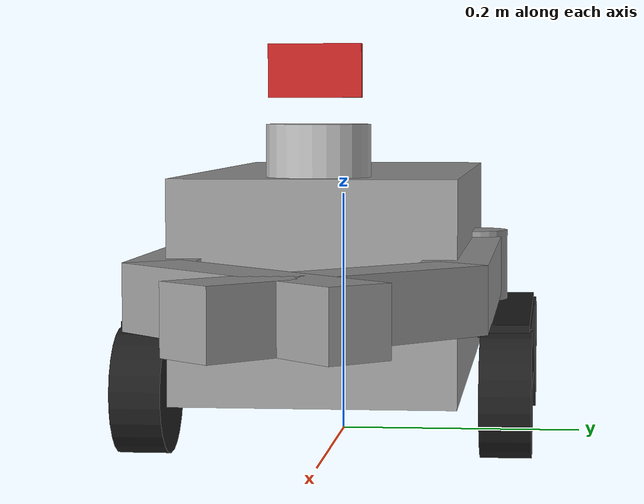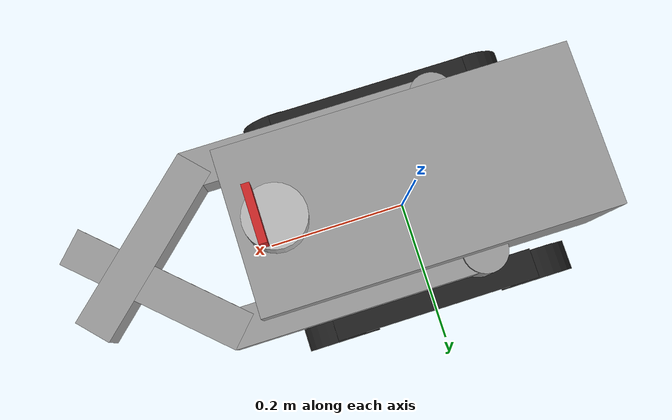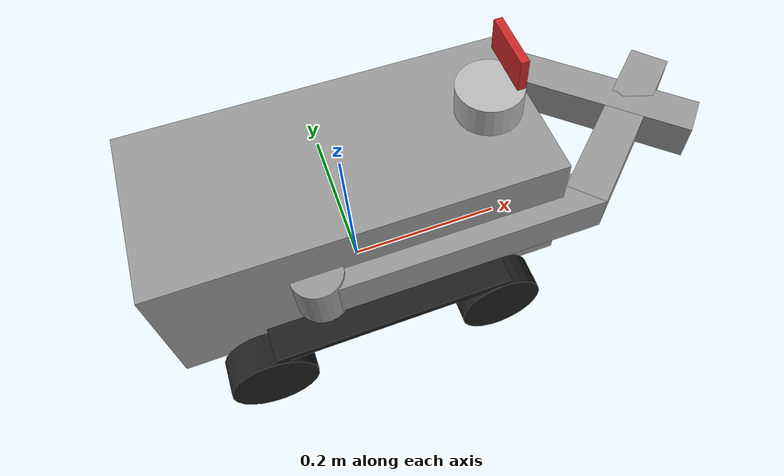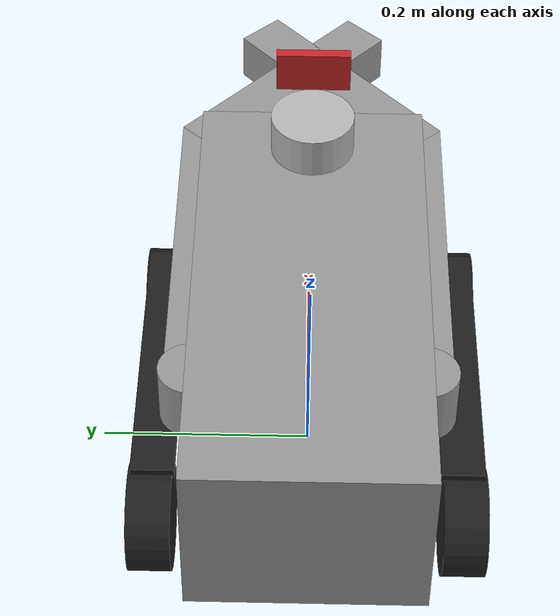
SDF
<?xml version='1.0'?>
<sdf version='1.7'>
  <model name='tankbot_gripper'>
    <link name='tankbot::chassis'>
      <pose>0 0 0.135 0 -0 0</pose>
      <inertial>
        <pose>0.0465 0 0 0 -0 0</pose>
        <mass>2</mass>
        <inertia>
          <ixx>0.0125927</ixx>
          <iyy>0.0408542</iyy>
          <izz>0.0438135</izz>
          <ixy>0</ixy>
          <ixz>0</ixz>
          <iyz>0</iyz>
        </inertia>
      </inertial>
      <self_collide>0</self_collide>
      <enable_wind>0</enable_wind>
      <kinematic>0</kinematic>
      <visual name='visual'>
        <geometry>
          <box>
            <size>0.465 0.216 0.17</size>
          </box>
        </geometry>
        <material>
          <script>
            <uri>file://media/materials/scripts/gazebo.material</uri>
            <name>Gazebo/Grey</name>
          </script>
          <shader type='pixel'/>
        </material>
        <pose>0 0 0 0 -0 0</pose>
        <transparency>0</transparency>
        <cast_shadows>1</cast_shadows>
      </visual>
      <collision name='collision'>
        <laser_retro>0</laser_retro>
        <max_contacts>10</max_contacts>
        <pose>0 0 0 0 -0 0</pose>
        <geometry>
          <box>
            <size>0.465 0.216 0.17</size>
          </box>
        </geometry>
        <surface>
          <friction>
            <ode>
              <mu>1</mu>
              <mu2>1</mu2>
              <fdir1>0 0 0</fdir1>
              <slip1>0</slip1>
              <slip2>0</slip2>
            </ode>
            <torsional>
              <coefficient>1</coefficient>
              <patch_radius>0</patch_radius>
              <surface_radius>0</surface_radius>
              <use_patch_radius>1</use_patch_radius>
              <ode>
                <slip>0</slip>
              </ode>
            </torsional>
          </friction>
          <bounce>
            <restitution_coefficient>0</restitution_coefficient>
            <threshold>1e+06</threshold>
          </bounce>
          <contact>
            <collide_without_contact>0</collide_without_contact>
            <collide_without_contact_bitmask>1</collide_without_contact_bitmask>
            <collide_bitmask>1</collide_bitmask>
            <ode>
              <soft_cfm>0</soft_cfm>
              <soft_erp>0.2</soft_erp>
              <kp>1e+13</kp>
              <kd>1</kd>
              <max_vel>0.01</max_vel>
              <min_depth>0</min_depth>
            </ode>
            <bullet>
              <split_impulse>1</split_impulse>
              <split_impulse_penetration_threshold>-0.01</split_impulse_penetration_threshold>
              <soft_cfm>0</soft_cfm>
              <soft_erp>0.2</soft_erp>
              <kp>1e+13</kp>
              <kd>1</kd>
            </bullet>
          </contact>
        </surface>
      </collision>
    </link>
    <link name='tankbot::camera_sensor::link'>
      <inertial>
        <mass>0.1</mass>
        <pose>0 0 0 0 -0 0</pose>
        <inertia>
          <ixx>1</ixx>
          <ixy>0</ixy>
          <ixz>0</ixz>
          <iyy>1</iyy>
          <iyz>0</iyz>
          <izz>1</izz>
        </inertia>
      </inertial>
      <sensor name='camera' type='camera'>
        <camera>
          <horizontal_fov>1.39626</horizontal_fov>
          <image>
            <width>800</width>
            <height>800</height>
          </image>
          <clip>
            <near>0.02</near>
            <far>300</far>
          </clip>
        </camera>
        <always_on>1</always_on>
        <update_rate>10</update_rate>
        <visualize>1</visualize>
        <plugin name='camera_controller' filename='libCameraPlugin.so'/>
      </sensor>
      <pose>0.200001 0 0.3 0 -0 0</pose>
      <self_collide>0</self_collide>
      <enable_wind>0</enable_wind>
      <kinematic>0</kinematic>
      <visual name='visual'>
        <geometry>
          <box>
            <size>0.01 0.07 0.04</size>
          </box>
        </geometry>
        <material>
          <script>
            <uri>file://media/materials/scripts/gazebo.material</uri>
            <name>Gazebo/Red</name>
          </script>
          <shader type='pixel'/>
        </material>
        <pose>0 0 0 0 -0 0</pose>
        <transparency>0</transparency>
        <cast_shadows>1</cast_shadows>
      </visual>
      <collision name='collision'>
        <laser_retro>0</laser_retro>
        <max_contacts>10</max_contacts>
        <pose>0 0 -0.0145 0 -0 0</pose>
        <geometry>
          <box>
            <size>0.01 0.07 0.04</size>
          </box>
        </geometry>
        <surface>
          <friction>
            <ode>
              <mu>1</mu>
              <mu2>1</mu2>
              <fdir1>0 0 0</fdir1>
              <slip1>0</slip1>
              <slip2>0</slip2>
            </ode>
            <torsional>
              <coefficient>1</coefficient>
              <patch_radius>0</patch_radius>
              <surface_radius>0</surface_radius>
              <use_patch_radius>1</use_patch_radius>
              <ode>
                <slip>0</slip>
              </ode>
            </torsional>
          </friction>
          <bounce>
            <restitution_coefficient>0</restitution_coefficient>
            <threshold>1e+06</threshold>
          </bounce>
          <contact>
            <collide_without_contact>0</collide_without_contact>
            <collide_without_contact_bitmask>1</collide_without_contact_bitmask>
            <collide_bitmask>1</collide_bitmask>
            <ode>
              <soft_cfm>0</soft_cfm>
              <soft_erp>0.2</soft_erp>
              <kp>1e+13</kp>
              <kd>1</kd>
              <max_vel>0.01</max_vel>
              <min_depth>0</min_depth>
            </ode>
            <bullet>
              <split_impulse>1</split_impulse>
              <split_impulse_penetration_threshold>-0.01</split_impulse_penetration_threshold>
              <soft_cfm>0</soft_cfm>
              <soft_erp>0.2</soft_erp>
              <kp>1e+13</kp>
              <kd>1</kd>
            </bullet>
          </contact>
        </surface>
      </collision>
    </link>
    <link name='tankbot::chain_l_up'>
      <pose>0.0098 0.14 0.1 0 -0 0</pose>
      <gravity>0</gravity>
      <self_collide>0</self_collide>
      <inertial>
        <pose>0 0 0 0 -0 0</pose>
        <inertia>
          <ixx>1</ixx>
          <ixy>0</ixy>
          <ixz>0</ixz>
          <iyy>1</iyy>
          <iyz>0</iyz>
          <izz>1</izz>
        </inertia>
        <mass>1</mass>
      </inertial>
      <enable_wind>0</enable_wind>
      <kinematic>0</kinematic>
      <visual name='visual'>
        <geometry>
          <box>
            <size>0.28 0.04 0.01</size>
          </box>
        </geometry>
        <material>
          <script>
            <uri>file://media/materials/scripts/gazebo.material</uri>
            <name>Gazebo/Black</name>
          </script>
          <shader type='pixel'/>
        </material>
        <pose>0 0 0 0 -0 0</pose>
        <transparency>0</transparency>
        <cast_shadows>1</cast_shadows>
      </visual>
      <collision name='collision'>
        <laser_retro>0</laser_retro>
        <max_contacts>10</max_contacts>
        <pose>0 0 0 0 -0 0</pose>
        <geometry>
          <box>
            <size>0.28 0.04 0.01</size>
          </box>
        </geometry>
        <surface>
          <friction>
            <ode>
              <mu>1</mu>
              <mu2>1</mu2>
              <fdir1>0 0 0</fdir1>
              <slip1>0</slip1>
              <slip2>0</slip2>
            </ode>
            <torsional>
              <coefficient>1</coefficient>
              <patch_radius>0</patch_radius>
              <surface_radius>0</surface_radius>
              <use_patch_radius>1</use_patch_radius>
              <ode>
                <slip>0</slip>
              </ode>
            </torsional>
          </friction>
          <bounce>
            <restitution_coefficient>0</restitution_coefficient>
            <threshold>1e+06</threshold>
          </bounce>
          <contact>
            <collide_without_contact>0</collide_without_contact>
            <collide_without_contact_bitmask>1</collide_without_contact_bitmask>
            <collide_bitmask>1</collide_bitmask>
            <ode>
              <soft_cfm>0</soft_cfm>
              <soft_erp>0.2</soft_erp>
              <kp>1e+13</kp>
              <kd>1</kd>
              <max_vel>0.01</max_vel>
              <min_depth>0</min_depth>
            </ode>
            <bullet>
              <split_impulse>1</split_impulse>
              <split_impulse_penetration_threshold>-0.01</split_impulse_penetration_threshold>
              <soft_cfm>0</soft_cfm>
              <soft_erp>0.2</soft_erp>
              <kp>1e+13</kp>
              <kd>1</kd>
            </bullet>
          </contact>
        </surface>
      </collision>
    </link>
    <link name='tankbot::chain_r_up'>
      <pose>0.0098 -0.14 0.1 0 -0 0</pose>
      <gravity>0</gravity>
      <self_collide>0</self_collide>
      <inertial>
        <pose>0 0 0 0 -0 0</pose>
        <inertia>
          <ixx>1</ixx>
          <ixy>0</ixy>
          <ixz>0</ixz>
          <iyy>1</iyy>
          <iyz>0</iyz>
          <izz>1</izz>
        </inertia>
        <mass>1</mass>
      </inertial>
      <enable_wind>0</enable_wind>
      <kinematic>0</kinematic>
      <visual name='visual'>
        <geometry>
          <box>
            <size>0.28 0.04 0.01</size>
          </box>
        </geometry>
        <material>
          <script>
            <uri>file://media/materials/scripts/gazebo.material</uri>
            <name>Gazebo/Black</name>
          </script>
          <shader type='pixel'/>
        </material>
        <pose>0 0 0 0 -0 0</pose>
        <transparency>0</transparency>
        <cast_shadows>1</cast_shadows>
      </visual>
      <collision name='collision'>
        <laser_retro>0</laser_retro>
        <max_contacts>10</max_contacts>
        <pose>0 0 0 0 -0 0</pose>
        <geometry>
          <box>
            <size>0.28 0.04 0.01</size>
          </box>
        </geometry>
        <surface>
          <friction>
            <ode>
              <mu>1</mu>
              <mu2>1</mu2>
              <fdir1>0 0 0</fdir1>
              <slip1>0</slip1>
              <slip2>0</slip2>
            </ode>
            <torsional>
              <coefficient>1</coefficient>
              <patch_radius>0</patch_radius>
              <surface_radius>0</surface_radius>
              <use_patch_radius>1</use_patch_radius>
              <ode>
                <slip>0</slip>
              </ode>
            </torsional>
          </friction>
          <bounce>
            <restitution_coefficient>0</restitution_coefficient>
            <threshold>1e+06</threshold>
          </bounce>
          <contact>
            <collide_without_contact>0</collide_without_contact>
            <collide_without_contact_bitmask>1</collide_without_contact_bitmask>
            <collide_bitmask>1</collide_bitmask>
            <ode>
              <soft_cfm>0</soft_cfm>
              <soft_erp>0.2</soft_erp>
              <kp>1e+13</kp>
              <kd>1</kd>
              <max_vel>0.01</max_vel>
              <min_depth>0</min_depth>
            </ode>
            <bullet>
              <split_impulse>1</split_impulse>
              <split_impulse_penetration_threshold>-0.01</split_impulse_penetration_threshold>
              <soft_cfm>0</soft_cfm>
              <soft_erp>0.2</soft_erp>
              <kp>1e+13</kp>
              <kd>1</kd>
            </bullet>
          </contact>
        </surface>
      </collision>
    </link>
    <link name='tankbot::ultrasonic_sensor::link'>
      <inertial>
        <mass>0.1</mass>
        <pose>0 0 0 0 -0 0</pose>
        <inertia>
          <ixx>1</ixx>
          <ixy>0</ixy>
          <ixz>0</ixz>
          <iyy>1</iyy>
          <iyz>0</iyz>
          <izz>1</izz>
        </inertia>
      </inertial>
      <sensor name='sonar' type='sonar'>
        <pose>0.04 0 0 0 1.5 3.14</pose>
        <sonar>
          <min>0</min>
          <max>3</max>
          <radius>0.3</radius>
        </sonar>
        <plugin name='sonar' filename='libSonarPlugin.so'/>
        <always_on>1</always_on>
        <update_rate>30</update_rate>
        <visualize>1</visualize>
      </sensor>
      <pose>0.18 0 0.24 0 -0 0</pose>
      <self_collide>0</self_collide>
      <enable_wind>0</enable_wind>
      <kinematic>0</kinematic>
      <visual name='visual'>
        <geometry>
          <cylinder>
            <radius>0.04</radius>
            <length>0.04</length>
          </cylinder>
        </geometry>
        <material>
          <shader type='pixel'/>
        </material>
        <pose>0 0 0 0 -0 0</pose>
        <transparency>0</transparency>
        <cast_shadows>1</cast_shadows>
      </visual>
      <collision name='collision-base'>
        <laser_retro>0</laser_retro>
        <max_contacts>10</max_contacts>
        <pose>0 0 -0.0145 0 -0 0</pose>
        <geometry>
          <box>
            <size>0.05 0.05 0.041</size>
          </box>
        </geometry>
        <surface>
          <friction>
            <ode>
              <mu>1</mu>
              <mu2>1</mu2>
              <fdir1>0 0 0</fdir1>
              <slip1>0</slip1>
              <slip2>0</slip2>
            </ode>
            <torsional>
              <coefficient>1</coefficient>
              <patch_radius>0</patch_radius>
              <surface_radius>0</surface_radius>
              <use_patch_radius>1</use_patch_radius>
              <ode>
                <slip>0</slip>
              </ode>
            </torsional>
          </friction>
          <bounce>
            <restitution_coefficient>0</restitution_coefficient>
            <threshold>1e+06</threshold>
          </bounce>
          <contact>
            <collide_without_contact>0</collide_without_contact>
            <collide_without_contact_bitmask>1</collide_without_contact_bitmask>
            <collide_bitmask>1</collide_bitmask>
            <ode>
              <soft_cfm>0</soft_cfm>
              <soft_erp>0.2</soft_erp>
              <kp>1e+13</kp>
              <kd>1</kd>
              <max_vel>0.01</max_vel>
              <min_depth>0</min_depth>
            </ode>
            <bullet>
              <split_impulse>1</split_impulse>
              <split_impulse_penetration_threshold>-0.01</split_impulse_penetration_threshold>
              <soft_cfm>0</soft_cfm>
              <soft_erp>0.2</soft_erp>
              <kp>1e+13</kp>
              <kd>1</kd>
            </bullet>
          </contact>
        </surface>
      </collision>
      <collision name='collision-top'>
        <laser_retro>0</laser_retro>
        <max_contacts>10</max_contacts>
        <pose>0 0 0.0205 0 -0 0</pose>
        <geometry>
          <cylinder>
            <radius>0.021</radius>
            <length>0.029</length>
          </cylinder>
        </geometry>
        <surface>
          <friction>
            <ode>
              <mu>1</mu>
              <mu2>1</mu2>
              <fdir1>0 0 0</fdir1>
              <slip1>0</slip1>
              <slip2>0</slip2>
            </ode>
            <torsional>
              <coefficient>1</coefficient>
              <patch_radius>0</patch_radius>
              <surface_radius>0</surface_radius>
              <use_patch_radius>1</use_patch_radius>
              <ode>
                <slip>0</slip>
              </ode>
            </torsional>
          </friction>
          <bounce>
            <restitution_coefficient>0</restitution_coefficient>
            <threshold>1e+06</threshold>
          </bounce>
          <contact>
            <collide_without_contact>0</collide_without_contact>
            <collide_without_contact_bitmask>1</collide_without_contact_bitmask>
            <collide_bitmask>1</collide_bitmask>
            <ode>
              <soft_cfm>0</soft_cfm>
              <soft_erp>0.2</soft_erp>
              <kp>1e+13</kp>
              <kd>1</kd>
              <max_vel>0.01</max_vel>
              <min_depth>0</min_depth>
            </ode>
            <bullet>
              <split_impulse>1</split_impulse>
              <split_impulse_penetration_threshold>-0.01</split_impulse_penetration_threshold>
              <soft_cfm>0</soft_cfm>
              <soft_erp>0.2</soft_erp>
              <kp>1e+13</kp>
              <kd>1</kd>
            </bullet>
          </contact>
        </surface>
      </collision>
    </link>
    <link name='tankbot::wheel_fl'>
      <pose>0.1395 0.142 0.05 -1.5708 -0.087266 0</pose>
      <inertial>
        <mass>0.25</mass>
        <inertia>
          <ixx>0.000189583</ixx>
          <iyy>0.000189583</iyy>
          <izz>0.0003125</izz>
          <ixy>0</ixy>
          <ixz>0</ixz>
          <iyz>0</iyz>
        </inertia>
        <pose>0 0 0 0 -0 0</pose>
      </inertial>
      <self_collide>0</self_collide>
      <enable_wind>0</enable_wind>
      <kinematic>0</kinematic>
      <visual name='tankbot::wheel_fl'>
        <geometry>
          <cylinder>
            <radius>0.05</radius>
            <length>0.04</length>
          </cylinder>
        </geometry>
        <material>
          <script>
            <uri>file://media/materials/scripts/gazebo.material</uri>
            <name>Gazebo/Black</name>
          </script>
          <shader type='pixel'/>
        </material>
        <pose>0 0 0 0 -0 0</pose>
        <transparency>0</transparency>
        <cast_shadows>1</cast_shadows>
      </visual>
      <collision name='collision'>
        <laser_retro>0</laser_retro>
        <max_contacts>10</max_contacts>
        <pose>0 0 0 0 -0 0</pose>
        <geometry>
          <cylinder>
            <radius>0.05</radius>
            <length>0.04</length>
          </cylinder>
        </geometry>
        <surface>
          <friction>
            <ode>
              <mu>1</mu>
              <mu2>1</mu2>
              <fdir1>0 0 0</fdir1>
              <slip1>0</slip1>
              <slip2>0</slip2>
            </ode>
            <torsional>
              <coefficient>1</coefficient>
              <patch_radius>0</patch_radius>
              <surface_radius>0</surface_radius>
              <use_patch_radius>1</use_patch_radius>
              <ode>
                <slip>0</slip>
              </ode>
            </torsional>
          </friction>
          <bounce>
            <restitution_coefficient>0</restitution_coefficient>
            <threshold>1e+06</threshold>
          </bounce>
          <contact>
            <collide_without_contact>0</collide_without_contact>
            <collide_without_contact_bitmask>1</collide_without_contact_bitmask>
            <collide_bitmask>1</collide_bitmask>
            <ode>
              <soft_cfm>0</soft_cfm>
              <soft_erp>0.2</soft_erp>
              <kp>1e+13</kp>
              <kd>1</kd>
              <max_vel>0.01</max_vel>
              <min_depth>0</min_depth>
            </ode>
            <bullet>
              <split_impulse>1</split_impulse>
              <split_impulse_penetration_threshold>-0.01</split_impulse_penetration_threshold>
              <soft_cfm>0</soft_cfm>
              <soft_erp>0.2</soft_erp>
              <kp>1e+13</kp>
              <kd>1</kd>
            </bullet>
          </contact>
        </surface>
      </collision>
    </link>
    <link name='tankbot::wheel_fr'>
      <pose>0.1395 -0.142 0.05 -1.5708 -0.087266 0</pose>
      <inertial>
        <mass>0.25</mass>
        <inertia>
          <ixx>0.000189583</ixx>
          <iyy>0.000189583</iyy>
          <izz>0.0003125</izz>
          <ixy>0</ixy>
          <ixz>0</ixz>
          <iyz>0</iyz>
        </inertia>
        <pose>0 0 0 0 -0 0</pose>
      </inertial>
      <self_collide>0</self_collide>
      <enable_wind>0</enable_wind>
      <kinematic>0</kinematic>
      <visual name='visual'>
        <geometry>
          <cylinder>
            <radius>0.05</radius>
            <length>0.04</length>
          </cylinder>
        </geometry>
        <material>
          <script>
            <uri>file://media/materials/scripts/gazebo.material</uri>
            <name>Gazebo/Black</name>
          </script>
          <shader type='pixel'/>
        </material>
        <pose>0 0 0 0 -0 0</pose>
        <transparency>0</transparency>
        <cast_shadows>1</cast_shadows>
      </visual>
      <collision name='collision'>
        <laser_retro>0</laser_retro>
        <max_contacts>10</max_contacts>
        <pose>0 0 0 0 -0 0</pose>
        <geometry>
          <cylinder>
            <radius>0.05</radius>
            <length>0.04</length>
          </cylinder>
        </geometry>
        <surface>
          <friction>
            <ode>
              <mu>1</mu>
              <mu2>1</mu2>
              <fdir1>0 0 0</fdir1>
              <slip1>0</slip1>
              <slip2>0</slip2>
            </ode>
            <torsional>
              <coefficient>1</coefficient>
              <patch_radius>0</patch_radius>
              <surface_radius>0</surface_radius>
              <use_patch_radius>1</use_patch_radius>
              <ode>
                <slip>0</slip>
              </ode>
            </torsional>
          </friction>
          <bounce>
            <restitution_coefficient>0</restitution_coefficient>
            <threshold>1e+06</threshold>
          </bounce>
          <contact>
            <collide_without_contact>0</collide_without_contact>
            <collide_without_contact_bitmask>1</collide_without_contact_bitmask>
            <collide_bitmask>1</collide_bitmask>
            <ode>
              <soft_cfm>0</soft_cfm>
              <soft_erp>0.2</soft_erp>
              <kp>1e+13</kp>
              <kd>1</kd>
              <max_vel>0.01</max_vel>
              <min_depth>0</min_depth>
            </ode>
            <bullet>
              <split_impulse>1</split_impulse>
              <split_impulse_penetration_threshold>-0.01</split_impulse_penetration_threshold>
              <soft_cfm>0</soft_cfm>
              <soft_erp>0.2</soft_erp>
              <kp>1e+13</kp>
              <kd>1</kd>
            </bullet>
          </contact>
        </surface>
      </collision>
    </link>
    <link name='tankbot::wheel_rl'>
      <pose>-0.1395 0.142 0.05 -1.5708 0 0</pose>
      <inertial>
        <mass>0.25</mass>
        <inertia>
          <ixx>0.000189583</ixx>
          <iyy>0.000189583</iyy>
          <izz>0.0003125</izz>
          <ixy>0</ixy>
          <ixz>0</ixz>
          <iyz>0</iyz>
        </inertia>
        <pose>0 0 0 0 -0 0</pose>
      </inertial>
      <self_collide>0</self_collide>
      <enable_wind>0</enable_wind>
      <kinematic>0</kinematic>
      <visual name='visual'>
        <geometry>
          <cylinder>
            <radius>0.05</radius>
            <length>0.04</length>
          </cylinder>
        </geometry>
        <material>
          <script>
            <uri>file://media/materials/scripts/gazebo.material</uri>
            <name>Gazebo/Black</name>
          </script>
          <shader type='pixel'/>
        </material>
        <pose>0 0 0 0 -0 0</pose>
        <transparency>0</transparency>
        <cast_shadows>1</cast_shadows>
      </visual>
      <collision name='collision'>
        <laser_retro>0</laser_retro>
        <max_contacts>10</max_contacts>
        <pose>0 0 0 0 -0 0</pose>
        <geometry>
          <cylinder>
            <radius>0.05</radius>
            <length>0.04</length>
          </cylinder>
        </geometry>
        <surface>
          <friction>
            <ode>
              <mu>1</mu>
              <mu2>1</mu2>
              <fdir1>0 0 0</fdir1>
              <slip1>0</slip1>
              <slip2>0</slip2>
            </ode>
            <torsional>
              <coefficient>1</coefficient>
              <patch_radius>0</patch_radius>
              <surface_radius>0</surface_radius>
              <use_patch_radius>1</use_patch_radius>
              <ode>
                <slip>0</slip>
              </ode>
            </torsional>
          </friction>
          <bounce>
            <restitution_coefficient>0</restitution_coefficient>
            <threshold>1e+06</threshold>
          </bounce>
          <contact>
            <collide_without_contact>0</collide_without_contact>
            <collide_without_contact_bitmask>1</collide_without_contact_bitmask>
            <collide_bitmask>1</collide_bitmask>
            <ode>
              <soft_cfm>0</soft_cfm>
              <soft_erp>0.2</soft_erp>
              <kp>1e+13</kp>
              <kd>1</kd>
              <max_vel>0.01</max_vel>
              <min_depth>0</min_depth>
            </ode>
            <bullet>
              <split_impulse>1</split_impulse>
              <split_impulse_penetration_threshold>-0.01</split_impulse_penetration_threshold>
              <soft_cfm>0</soft_cfm>
              <soft_erp>0.2</soft_erp>
              <kp>1e+13</kp>
              <kd>1</kd>
            </bullet>
          </contact>
        </surface>
      </collision>
    </link>
    <link name='tankbot::wheel_rr'>
      <pose>-0.1395 -0.142 0.05 -1.5708 0 0</pose>
      <inertial>
        <mass>0.25</mass>
        <inertia>
          <ixx>0.000189583</ixx>
          <iyy>0.000189583</iyy>
          <izz>0.0003125</izz>
          <ixy>0</ixy>
          <ixz>0</ixz>
          <iyz>0</iyz>
        </inertia>
        <pose>0 0 0 0 -0 0</pose>
      </inertial>
      <self_collide>0</self_collide>
      <enable_wind>0</enable_wind>
      <kinematic>0</kinematic>
      <visual name='visual'>
        <geometry>
          <cylinder>
            <radius>0.05</radius>
            <length>0.04</length>
          </cylinder>
        </geometry>
        <material>
          <script>
            <uri>file://media/materials/scripts/gazebo.material</uri>
            <name>Gazebo/Black</name>
          </script>
          <shader type='pixel'/>
        </material>
        <pose>0 0 0 0 -0 0</pose>
        <transparency>0</transparency>
        <cast_shadows>1</cast_shadows>
      </visual>
      <collision name='collision'>
        <laser_retro>0</laser_retro>
        <max_contacts>10</max_contacts>
        <pose>0 0 0 0 -0 0</pose>
        <geometry>
          <cylinder>
            <radius>0.05</radius>
            <length>0.04</length>
          </cylinder>
        </geometry>
        <surface>
          <friction>
            <ode>
              <mu>1</mu>
              <mu2>1</mu2>
              <fdir1>0 0 0</fdir1>
              <slip1>0</slip1>
              <slip2>0</slip2>
            </ode>
            <torsional>
              <coefficient>1</coefficient>
              <patch_radius>0</patch_radius>
              <surface_radius>0</surface_radius>
              <use_patch_radius>1</use_patch_radius>
              <ode>
                <slip>0</slip>
              </ode>
            </torsional>
          </friction>
          <bounce>
            <restitution_coefficient>0</restitution_coefficient>
            <threshold>1e+06</threshold>
          </bounce>
          <contact>
            <collide_without_contact>0</collide_without_contact>
            <collide_without_contact_bitmask>1</collide_without_contact_bitmask>
            <collide_bitmask>1</collide_bitmask>
            <ode>
              <soft_cfm>0</soft_cfm>
              <soft_erp>0.2</soft_erp>
              <kp>1e+13</kp>
              <kd>1</kd>
              <max_vel>0.01</max_vel>
              <min_depth>0</min_depth>
            </ode>
            <bullet>
              <split_impulse>1</split_impulse>
              <split_impulse_penetration_threshold>-0.01</split_impulse_penetration_threshold>
              <soft_cfm>0</soft_cfm>
              <soft_erp>0.2</soft_erp>
              <kp>1e+13</kp>
              <kd>1</kd>
            </bullet>
          </contact>
        </surface>
      </collision>
    </link>
    <link name='tankbot_gripper::right_aftarm'>
      <inertial>
        <mass>1</mass>
        <inertia>
          <ixx>0.166667</ixx>
          <ixy>0</ixy>
          <ixz>0</ixz>
          <iyy>0.166667</iyy>
          <iyz>0</iyz>
          <izz>0.166667</izz>
        </inertia>
        <pose>0 0 0 0 -0 0</pose>
      </inertial>
      <pose>0.101778 -0.106425 0.136044 -4e-06 -8e-06 -0.000587</pose>
      <gravity>1</gravity>
      <self_collide>0</self_collide>
      <kinematic>0</kinematic>
      <enable_wind>0</enable_wind>
      <visual name='visual'>
        <pose>0 0 0 0 -0 0</pose>
        <geometry>
          <box>
            <size>0.35 0.05 0.05</size>
          </box>
        </geometry>
        <material>
          <lighting>1</lighting>
          <script>
            <uri>file://media/materials/scripts/gazebo.material</uri>
            <name>Gazebo/Grey</name>
          </script>
          <shader type='pixel'>
            <normal_map>__default__</normal_map>
          </shader>
          <ambient>0.3 0.3 0.3 1</ambient>
          <diffuse>0.7 0.7 0.7 1</diffuse>
          <specular>0.01 0.01 0.01 1</specular>
          <emissive>0 0 0 1</emissive>
        </material>
        <transparency>0</transparency>
        <cast_shadows>1</cast_shadows>
      </visual>
      <collision name='collision'>
        <laser_retro>0</laser_retro>
        <max_contacts>10</max_contacts>
        <pose>0 0 0 0 -0 0</pose>
        <geometry>
          <box>
            <size>0.35 0.05 0.05</size>
          </box>
        </geometry>
        <surface>
          <friction>
            <ode>
              <mu>1</mu>
              <mu2>1</mu2>
              <fdir1>0 0 0</fdir1>
              <slip1>0</slip1>
              <slip2>0</slip2>
            </ode>
            <torsional>
              <coefficient>1</coefficient>
              <patch_radius>0</patch_radius>
              <surface_radius>0</surface_radius>
              <use_patch_radius>1</use_patch_radius>
              <ode>
                <slip>0</slip>
              </ode>
            </torsional>
          </friction>
          <bounce>
            <restitution_coefficient>0</restitution_coefficient>
            <threshold>1e+06</threshold>
          </bounce>
          <contact>
            <collide_without_contact>0</collide_without_contact>
            <collide_without_contact_bitmask>1</collide_without_contact_bitmask>
            <collide_bitmask>1</collide_bitmask>
            <ode>
              <soft_cfm>0</soft_cfm>
              <soft_erp>0.2</soft_erp>
              <kp>1e+13</kp>
              <kd>1</kd>
              <max_vel>0.01</max_vel>
              <min_depth>0</min_depth>
            </ode>
            <bullet>
              <split_impulse>1</split_impulse>
              <split_impulse_penetration_threshold>-0.01</split_impulse_penetration_threshold>
              <soft_cfm>0</soft_cfm>
              <soft_erp>0.2</soft_erp>
              <kp>1e+13</kp>
              <kd>1</kd>
            </bullet>
          </contact>
        </surface>
      </collision>
    </link>
    <link name='tankbot_gripper::right_forearm'>
      <inertial>
        <mass>1</mass>
        <inertia>
          <ixx>0.166667</ixx>
          <ixy>0</ixy>
          <ixz>0</ixz>
          <iyy>0.166667</iyy>
          <iyz>0</iyz>
          <izz>0.166667</izz>
        </inertia>
        <pose>0 0 0 0 -0 0</pose>
      </inertial>
      <pose>0.351181 -0.028037 0.136046 0 -0 0.75</pose>
      <gravity>1</gravity>
      <self_collide>0</self_collide>
      <kinematic>0</kinematic>
      <enable_wind>0</enable_wind>
      <visual name='visual'>
        <pose>0 0 0 0 -0 0</pose>
        <geometry>
          <box>
            <size>0.25 0.05 0.05</size>
          </box>
        </geometry>
        <material>
          <lighting>1</lighting>
          <script>
            <uri>file://media/materials/scripts/gazebo.material</uri>
            <name>Gazebo/Grey</name>
          </script>
          <shader type='pixel'>
            <normal_map>__default__</normal_map>
          </shader>
          <ambient>0.3 0.3 0.3 1</ambient>
          <diffuse>0.7 0.7 0.7 1</diffuse>
          <specular>0.01 0.01 0.01 1</specular>
          <emissive>0 0 0 1</emissive>
        </material>
        <transparency>0</transparency>
        <cast_shadows>1</cast_shadows>
      </visual>
      <collision name='collision'>
        <laser_retro>0</laser_retro>
        <max_contacts>10</max_contacts>
        <pose>0 0 0 0 -0 0</pose>
        <geometry>
          <box>
            <size>0.25 0.05 0.05</size>
          </box>
        </geometry>
        <surface>
          <friction>
            <ode>
              <mu>1</mu>
              <mu2>1</mu2>
              <fdir1>0 0 0</fdir1>
              <slip1>0</slip1>
              <slip2>0</slip2>
            </ode>
            <torsional>
              <coefficient>1</coefficient>
              <patch_radius>0</patch_radius>
              <surface_radius>0</surface_radius>
              <use_patch_radius>1</use_patch_radius>
              <ode>
                <slip>0</slip>
              </ode>
            </torsional>
          </friction>
          <bounce>
            <restitution_coefficient>0</restitution_coefficient>
            <threshold>1e+06</threshold>
          </bounce>
          <contact>
            <collide_without_contact>0</collide_without_contact>
            <collide_without_contact_bitmask>1</collide_without_contact_bitmask>
            <collide_bitmask>1</collide_bitmask>
            <ode>
              <soft_cfm>0</soft_cfm>
              <soft_erp>0.2</soft_erp>
              <kp>1e+13</kp>
              <kd>1</kd>
              <max_vel>0.01</max_vel>
              <min_depth>0</min_depth>
            </ode>
            <bullet>
              <split_impulse>1</split_impulse>
              <split_impulse_penetration_threshold>-0.01</split_impulse_penetration_threshold>
              <soft_cfm>0</soft_cfm>
              <soft_erp>0.2</soft_erp>
              <kp>1e+13</kp>
              <kd>1</kd>
            </bullet>
          </contact>
        </surface>
      </collision>
    </link>
    <link name='tankbot_gripper::right_shoulder'>
      <inertial>
        <mass>1</mass>
        <inertia>
          <ixx>0.145833</ixx>
          <ixy>0</ixy>
          <ixz>0</ixz>
          <iyy>0.145833</iyy>
          <iyz>0</iyz>
          <izz>0.125</izz>
        </inertia>
        <pose>0 0 0 0 -0 0</pose>
      </inertial>
      <pose>-0.06118 -0.106329 0.136043 -4e-06 -8e-06 -0.000587</pose>
      <gravity>1</gravity>
      <self_collide>0</self_collide>
      <kinematic>0</kinematic>
      <enable_wind>0</enable_wind>
      <visual name='visual'>
        <pose>0 0 0 0 -0 0</pose>
        <geometry>
          <cylinder>
            <radius>0.03</radius>
            <length>0.06</length>
          </cylinder>
        </geometry>
        <material>
          <lighting>1</lighting>
          <script>
            <uri>file://media/materials/scripts/gazebo.material</uri>
            <name>Gazebo/Grey</name>
          </script>
          <shader type='pixel'>
            <normal_map>__default__</normal_map>
          </shader>
          <ambient>0.3 0.3 0.3 1</ambient>
          <diffuse>0.7 0.7 0.7 1</diffuse>
          <specular>0.01 0.01 0.01 1</specular>
          <emissive>0 0 0 1</emissive>
        </material>
        <transparency>0</transparency>
        <cast_shadows>1</cast_shadows>
      </visual>
      <collision name='collision'>
        <laser_retro>0</laser_retro>
        <max_contacts>10</max_contacts>
        <pose>0 0 0 0 -0 0</pose>
        <geometry>
          <cylinder>
            <radius>0.03</radius>
            <length>0.06</length>
          </cylinder>
        </geometry>
        <surface>
          <friction>
            <ode>
              <mu>1</mu>
              <mu2>1</mu2>
              <fdir1>0 0 0</fdir1>
              <slip1>0</slip1>
              <slip2>0</slip2>
            </ode>
            <torsional>
              <coefficient>1</coefficient>
              <patch_radius>0</patch_radius>
              <surface_radius>0</surface_radius>
              <use_patch_radius>1</use_patch_radius>
              <ode>
                <slip>0</slip>
              </ode>
            </torsional>
          </friction>
          <bounce>
            <restitution_coefficient>0</restitution_coefficient>
            <threshold>1e+06</threshold>
          </bounce>
          <contact>
            <collide_without_contact>0</collide_without_contact>
            <collide_without_contact_bitmask>1</collide_without_contact_bitmask>
            <collide_bitmask>1</collide_bitmask>
            <ode>
              <soft_cfm>0</soft_cfm>
              <soft_erp>0.2</soft_erp>
              <kp>1e+13</kp>
              <kd>1</kd>
              <max_vel>0.01</max_vel>
              <min_depth>0</min_depth>
            </ode>
            <bullet>
              <split_impulse>1</split_impulse>
              <split_impulse_penetration_threshold>-0.01</split_impulse_penetration_threshold>
              <soft_cfm>0</soft_cfm>
              <soft_erp>0.2</soft_erp>
              <kp>1e+13</kp>
              <kd>1</kd>
            </bullet>
          </contact>
        </surface>
      </collision>
    </link>
    <joint name='tankbot_gripper::right_elbow_joint' type='fixed'>
      <parent>tankbot_gripper::right_aftarm</parent>
      <child>tankbot_gripper::right_forearm</child>
    </joint>
    <joint name='tankbot_gripper::right_shoulder_joint' type='fixed'>
      <parent>tankbot_gripper::right_shoulder</parent>
      <child>tankbot_gripper::right_aftarm</child>
    </joint>
    <link name='tankbot_gripper::left_aftarm'>
      <inertial>
        <mass>1</mass>
        <inertia>
          <ixx>0.166667</ixx>
          <ixy>0</ixy>
          <ixz>0</ixz>
          <iyy>0.166667</iyy>
          <iyz>0</iyz>
          <izz>0.166667</izz>
        </inertia>
        <pose>0 0 0 0 -0 0</pose>
      </inertial>
      <pose>0.101778 0.107284 0.136044 -4e-06 -8e-06 -0.000587</pose>
      <gravity>1</gravity>
      <self_collide>0</self_collide>
      <kinematic>0</kinematic>
      <enable_wind>0</enable_wind>
      <visual name='visual'>
        <pose>0 0 0 0 -0 0</pose>
        <geometry>
          <box>
            <size>0.35 0.05 0.05</size>
          </box>
        </geometry>
        <material>
          <lighting>1</lighting>
          <script>
            <uri>file://media/materials/scripts/gazebo.material</uri>
            <name>Gazebo/Grey</name>
          </script>
          <shader type='pixel'>
            <normal_map>__default__</normal_map>
          </shader>
          <ambient>0.3 0.3 0.3 1</ambient>
          <diffuse>0.7 0.7 0.7 1</diffuse>
          <specular>0.01 0.01 0.01 1</specular>
          <emissive>0 0 0 1</emissive>
        </material>
        <transparency>0</transparency>
        <cast_shadows>1</cast_shadows>
      </visual>
      <collision name='collision'>
        <laser_retro>0</laser_retro>
        <max_contacts>10</max_contacts>
        <pose>0 0 0 0 -0 0</pose>
        <geometry>
          <box>
            <size>0.35 0.05 0.05</size>
          </box>
        </geometry>
        <surface>
          <friction>
            <ode>
              <mu>1</mu>
              <mu2>1</mu2>
              <fdir1>0 0 0</fdir1>
              <slip1>0</slip1>
              <slip2>0</slip2>
            </ode>
            <torsional>
              <coefficient>1</coefficient>
              <patch_radius>0</patch_radius>
              <surface_radius>0</surface_radius>
              <use_patch_radius>1</use_patch_radius>
              <ode>
                <slip>0</slip>
              </ode>
            </torsional>
          </friction>
          <bounce>
            <restitution_coefficient>0</restitution_coefficient>
            <threshold>1e+06</threshold>
          </bounce>
          <contact>
            <collide_without_contact>0</collide_without_contact>
            <collide_without_contact_bitmask>1</collide_without_contact_bitmask>
            <collide_bitmask>1</collide_bitmask>
            <ode>
              <soft_cfm>0</soft_cfm>
              <soft_erp>0.2</soft_erp>
              <kp>1e+13</kp>
              <kd>1</kd>
              <max_vel>0.01</max_vel>
              <min_depth>0</min_depth>
            </ode>
            <bullet>
              <split_impulse>1</split_impulse>
              <split_impulse_penetration_threshold>-0.01</split_impulse_penetration_threshold>
              <soft_cfm>0</soft_cfm>
              <soft_erp>0.2</soft_erp>
              <kp>1e+13</kp>
              <kd>1</kd>
            </bullet>
          </contact>
        </surface>
      </collision>
    </link>
    <link name='tankbot_gripper::left_forearm'>
      <inertial>
        <mass>1</mass>
        <inertia>
          <ixx>0.166667</ixx>
          <ixy>0</ixy>
          <ixz>0</ixz>
          <iyy>0.166667</iyy>
          <iyz>0</iyz>
          <izz>0.166667</izz>
        </inertia>
        <pose>0 0 0 0 -0 0</pose>
      </inertial>
      <pose>0.351181 0.028664 0.136046 0 0 -0.75</pose>
      <gravity>1</gravity>
      <self_collide>0</self_collide>
      <kinematic>0</kinematic>
      <enable_wind>0</enable_wind>
      <visual name='visual'>
        <pose>0 0 0 0 -0 0</pose>
        <geometry>
          <box>
            <size>0.25 0.05 0.05</size>
          </box>
        </geometry>
        <material>
          <lighting>1</lighting>
          <script>
            <uri>file://media/materials/scripts/gazebo.material</uri>
            <name>Gazebo/Grey</name>
          </script>
          <shader type='pixel'>
            <normal_map>__default__</normal_map>
          </shader>
          <ambient>0.3 0.3 0.3 1</ambient>
          <diffuse>0.7 0.7 0.7 1</diffuse>
          <specular>0.01 0.01 0.01 1</specular>
          <emissive>0 0 0 1</emissive>
        </material>
        <transparency>0</transparency>
        <cast_shadows>1</cast_shadows>
      </visual>
      <collision name='collision'>
        <laser_retro>0</laser_retro>
        <max_contacts>10</max_contacts>
        <pose>0 0 0 0 -0 0</pose>
        <geometry>
          <box>
            <size>0.25 0.05 0.05</size>
          </box>
        </geometry>
        <surface>
          <friction>
            <ode>
              <mu>1</mu>
              <mu2>1</mu2>
              <fdir1>0 0 0</fdir1>
              <slip1>0</slip1>
              <slip2>0</slip2>
            </ode>
            <torsional>
              <coefficient>1</coefficient>
              <patch_radius>0</patch_radius>
              <surface_radius>0</surface_radius>
              <use_patch_radius>1</use_patch_radius>
              <ode>
                <slip>0</slip>
              </ode>
            </torsional>
          </friction>
          <bounce>
            <restitution_coefficient>0</restitution_coefficient>
            <threshold>1e+06</threshold>
          </bounce>
          <contact>
            <collide_without_contact>0</collide_without_contact>
            <collide_without_contact_bitmask>1</collide_without_contact_bitmask>
            <collide_bitmask>1</collide_bitmask>
            <ode>
              <soft_cfm>0</soft_cfm>
              <soft_erp>0.2</soft_erp>
              <kp>1e+13</kp>
              <kd>1</kd>
              <max_vel>0.01</max_vel>
              <min_depth>0</min_depth>
            </ode>
            <bullet>
              <split_impulse>1</split_impulse>
              <split_impulse_penetration_threshold>-0.01</split_impulse_penetration_threshold>
              <soft_cfm>0</soft_cfm>
              <soft_erp>0.2</soft_erp>
              <kp>1e+13</kp>
              <kd>1</kd>
            </bullet>
          </contact>
        </surface>
      </collision>
    </link>
    <link name='tankbot_gripper::left_shoulder'>
      <inertial>
        <mass>1</mass>
        <inertia>
          <ixx>0.145833</ixx>
          <ixy>0</ixy>
          <ixz>0</ixz>
          <iyy>0.145833</iyy>
          <iyz>0</iyz>
          <izz>0.125</izz>
        </inertia>
        <pose>0 0 0 0 -0 0</pose>
      </inertial>
      <pose>-0.06118 0.10738 0.136043 -4e-06 -8e-06 -0.000587</pose>
      <gravity>1</gravity>
      <self_collide>0</self_collide>
      <kinematic>0</kinematic>
      <enable_wind>0</enable_wind>
      <visual name='visual'>
        <pose>0 0 0 0 -0 0</pose>
        <geometry>
          <cylinder>
            <radius>0.03</radius>
            <length>0.06</length>
          </cylinder>
        </geometry>
        <material>
          <lighting>1</lighting>
          <script>
            <uri>file://media/materials/scripts/gazebo.material</uri>
            <name>Gazebo/Grey</name>
          </script>
          <shader type='pixel'>
            <normal_map>__default__</normal_map>
          </shader>
          <ambient>0.3 0.3 0.3 1</ambient>
          <diffuse>0.7 0.7 0.7 1</diffuse>
          <specular>0.01 0.01 0.01 1</specular>
          <emissive>0 0 0 1</emissive>
        </material>
        <transparency>0</transparency>
        <cast_shadows>1</cast_shadows>
      </visual>
      <collision name='collision'>
        <laser_retro>0</laser_retro>
        <max_contacts>10</max_contacts>
        <pose>0 0 0 0 -0 0</pose>
        <geometry>
          <cylinder>
            <radius>0.03</radius>
            <length>0.06</length>
          </cylinder>
        </geometry>
        <surface>
          <friction>
            <ode>
              <mu>1</mu>
              <mu2>1</mu2>
              <fdir1>0 0 0</fdir1>
              <slip1>0</slip1>
              <slip2>0</slip2>
            </ode>
            <torsional>
              <coefficient>1</coefficient>
              <patch_radius>0</patch_radius>
              <surface_radius>0</surface_radius>
              <use_patch_radius>1</use_patch_radius>
              <ode>
                <slip>0</slip>
              </ode>
            </torsional>
          </friction>
          <bounce>
            <restitution_coefficient>0</restitution_coefficient>
            <threshold>1e+06</threshold>
          </bounce>
          <contact>
            <collide_without_contact>0</collide_without_contact>
            <collide_without_contact_bitmask>1</collide_without_contact_bitmask>
            <collide_bitmask>1</collide_bitmask>
            <ode>
              <soft_cfm>0</soft_cfm>
              <soft_erp>0.2</soft_erp>
              <kp>1e+13</kp>
              <kd>1</kd>
              <max_vel>0.01</max_vel>
              <min_depth>0</min_depth>
            </ode>
            <bullet>
              <split_impulse>1</split_impulse>
              <split_impulse_penetration_threshold>-0.01</split_impulse_penetration_threshold>
              <soft_cfm>0</soft_cfm>
              <soft_erp>0.2</soft_erp>
              <kp>1e+13</kp>
              <kd>1</kd>
            </bullet>
          </contact>
        </surface>
      </collision>
    </link>
    <joint name='tankbot_gripper::left_elbow_joint' type='fixed'>
      <parent>tankbot_gripper::left_aftarm</parent>
      <child>tankbot_gripper::left_forearm</child>
    </joint>
    <joint name='tankbot_gripper::left_shoulder_joint' type='fixed'>
      <parent>tankbot_gripper::left_shoulder</parent>
      <child>tankbot_gripper::left_aftarm</child>
    </joint>
    <plugin name='tankbot_control' filename='libtank_control_plugin.so'/>
    <joint name='tankbot::camera_joint' type='fixed'>
      <parent>tankbot::chassis</parent>
      <child>tankbot::camera_sensor::link</child>
      <pose>0 0 0 0 -0 0</pose>
      <physics>
        <ode>
          <limit>
            <cfm>0</cfm>
            <erp>0.2</erp>
          </limit>
          <suspension>
            <cfm>0</cfm>
            <erp>0.2</erp>
          </suspension>
        </ode>
      </physics>
    </joint>
    <joint name='tankbot::chain_up_2_joint' type='revolute'>
      <parent>tankbot::chassis</parent>
      <child>tankbot::chain_l_up</child>
      <pose>0 0 0 0 -0 0</pose>
      <axis>
        <xyz>1 0 0</xyz>
        <limit>
          <lower>-1.79769e+308</lower>
          <upper>1.79769e+308</upper>
          <effort>-1</effort>
          <velocity>-1</velocity>
        </limit>
        <dynamics>
          <spring_reference>0</spring_reference>
          <spring_stiffness>0</spring_stiffness>
          <damping>0</damping>
        </dynamics>
      </axis>
      <physics>
        <ode>
          <limit>
            <cfm>0</cfm>
            <erp>0.2</erp>
          </limit>
          <suspension>
            <cfm>0</cfm>
            <erp>0.2</erp>
          </suspension>
        </ode>
      </physics>
    </joint>
    <joint name='tankbot::chain_up_joint' type='revolute'>
      <parent>tankbot::chassis</parent>
      <child>tankbot::chain_r_up</child>
      <pose>0 0 0 0 -0 0</pose>
      <axis>
        <xyz>1 0 0</xyz>
        <limit>
          <lower>-1.79769e+308</lower>
          <upper>1.79769e+308</upper>
          <effort>-1</effort>
          <velocity>-1</velocity>
        </limit>
        <dynamics>
          <spring_reference>0</spring_reference>
          <spring_stiffness>0</spring_stiffness>
          <damping>0</damping>
        </dynamics>
      </axis>
      <physics>
        <ode>
          <limit>
            <cfm>0</cfm>
            <erp>0.2</erp>
          </limit>
          <suspension>
            <cfm>0</cfm>
            <erp>0.2</erp>
          </suspension>
        </ode>
      </physics>
    </joint>
    <joint name='tankbot::sonar_joint' type='fixed'>
      <parent>tankbot::chassis</parent>
      <child>tankbot::ultrasonic_sensor::link</child>
      <pose>0 0 0 0 -0 0</pose>
      <physics>
        <ode>
          <limit>
            <cfm>0</cfm>
            <erp>0.2</erp>
          </limit>
          <suspension>
            <cfm>0</cfm>
            <erp>0.2</erp>
          </suspension>
        </ode>
      </physics>
    </joint>
    <joint name='tankbot::wheel_fl_drive' type='revolute'>
      <parent>tankbot::chassis</parent>
      <child>tankbot::wheel_fl</child>
      <pose>0 0 0 0 -0 0</pose>
      <axis>
        <xyz>0 0 1</xyz>
        <limit>
          <lower>-1e+16</lower>
          <upper>1e+16</upper>
          <effort>-1</effort>
          <velocity>-1</velocity>
        </limit>
        <dynamics>
          <spring_reference>0</spring_reference>
          <spring_stiffness>0</spring_stiffness>
          <damping>0</damping>
          <friction>0</friction>
        </dynamics>
      </axis>
      <physics>
        <ode>
          <limit>
            <cfm>0</cfm>
            <erp>0.2</erp>
          </limit>
          <suspension>
            <cfm>0</cfm>
            <erp>0.2</erp>
          </suspension>
        </ode>
      </physics>
    </joint>
    <joint name='tankbot::wheel_fr_drive' type='revolute'>
      <parent>tankbot::chassis</parent>
      <child>tankbot::wheel_fr</child>
      <pose>0 0 0 0 -0 0</pose>
      <axis>
        <xyz>0 0 1</xyz>
        <limit>
          <lower>-1e+16</lower>
          <upper>1e+16</upper>
          <effort>-1</effort>
          <velocity>-1</velocity>
        </limit>
        <dynamics>
          <spring_reference>0</spring_reference>
          <spring_stiffness>0</spring_stiffness>
          <damping>0</damping>
          <friction>0</friction>
        </dynamics>
      </axis>
      <physics>
        <ode>
          <limit>
            <cfm>0</cfm>
            <erp>0.2</erp>
          </limit>
          <suspension>
            <cfm>0</cfm>
            <erp>0.2</erp>
          </suspension>
        </ode>
      </physics>
    </joint>
    <joint name='tankbot::wheel_rl_drive' type='revolute'>
      <parent>tankbot::chassis</parent>
      <child>tankbot::wheel_rl</child>
      <pose>0 0 0 0 -0 0</pose>
      <axis>
        <xyz>0 0 1</xyz>
        <limit>
          <lower>-1e+16</lower>
          <upper>1e+16</upper>
          <effort>-1</effort>
          <velocity>-1</velocity>
        </limit>
        <dynamics>
          <spring_reference>0</spring_reference>
          <spring_stiffness>0</spring_stiffness>
          <damping>0</damping>
          <friction>0</friction>
        </dynamics>
      </axis>
      <physics>
        <ode>
          <limit>
            <cfm>0</cfm>
            <erp>0.2</erp>
          </limit>
          <suspension>
            <cfm>0</cfm>
            <erp>0.2</erp>
          </suspension>
        </ode>
      </physics>
    </joint>
    <joint name='tankbot::wheel_rr_drive' type='revolute'>
      <parent>tankbot::chassis</parent>
      <child>tankbot::wheel_rr</child>
      <pose>0 0 0 0 -0 0</pose>
      <axis>
        <xyz>0 0 1</xyz>
        <limit>
          <lower>-1e+16</lower>
          <upper>1e+16</upper>
          <effort>-1</effort>
          <velocity>-1</velocity>
        </limit>
        <dynamics>
          <spring_reference>0</spring_reference>
          <spring_stiffness>0</spring_stiffness>
          <damping>0</damping>
          <friction>0</friction>
        </dynamics>
      </axis>
      <physics>
        <ode>
          <limit>
            <cfm>0</cfm>
            <erp>0.2</erp>
          </limit>
          <suspension>
            <cfm>0</cfm>
            <erp>0.2</erp>
          </suspension>
        </ode>
      </physics>
    </joint>
    <joint name='tankbot::right_arm_joint' type='revolute'>
      <parent>tankbot::chassis</parent>
      <child>tankbot_gripper::right_link_1</child>
      <pose>0 0 0 0 -0 0</pose>
      <axis>
        <xyz>0 0 1</xyz>
        <limit>
          <lower>-1e+16</lower>
          <upper>1e+16</upper>
          <effort>-1</effort>
          <velocity>-1</velocity>
        </limit>
        <dynamics>
          <spring_reference>0</spring_reference>
          <spring_stiffness>0</spring_stiffness>
          <damping>0</damping>
          <friction>0</friction>
        </dynamics>
      </axis>
      <physics>
        <ode>
          <limit>
            <cfm>0</cfm>
            <erp>0.2</erp>
          </limit>
          <suspension>
            <cfm>0</cfm>
            <erp>0.2</erp>
          </suspension>
        </ode>
      </physics>
    </joint>
    <joint name='tankbot::left_arm_joint' type='revolute'>
      <parent>tankbot::chassis</parent>
      <child>tankbot::left_link_1</child>
      <pose>0 0 0 0 -0 0</pose>
      <axis>
        <xyz>0 0 1</xyz>
        <limit>
          <lower>-1e+16</lower>
          <upper>1e+16</upper>
          <effort>-1</effort>
          <velocity>-1</velocity>
        </limit>
        <dynamics>
          <spring_reference>0</spring_reference>
          <spring_stiffness>0</spring_stiffness>
          <damping>0</damping>
          <friction>0</friction>
        </dynamics>
      </axis>
      <physics>
        <ode>
          <limit>
            <cfm>0</cfm>
            <erp>0.2</erp>
          </limit>
          <suspension>
            <cfm>0</cfm>
            <erp>0.2</erp>
          </suspension>
        </ode>
      </physics>
    </joint>
    <static>0</static>
    <allow_auto_disable>1</allow_auto_disable>
    <plugin name='tankbot_control' filename='libtank_control_plugin.so'/>
  </model>
</sdf>
